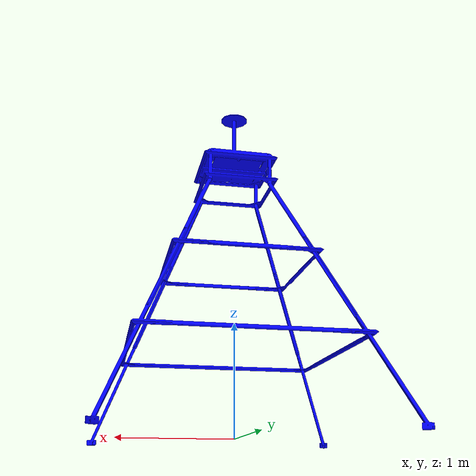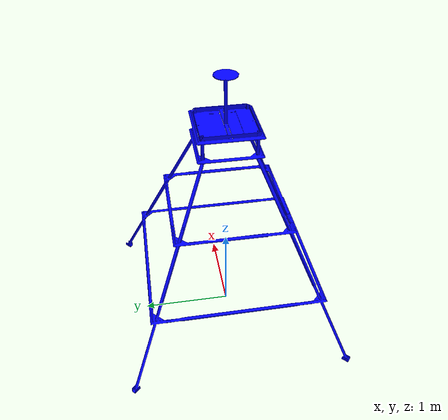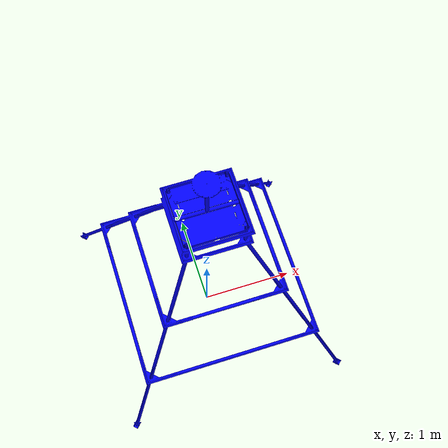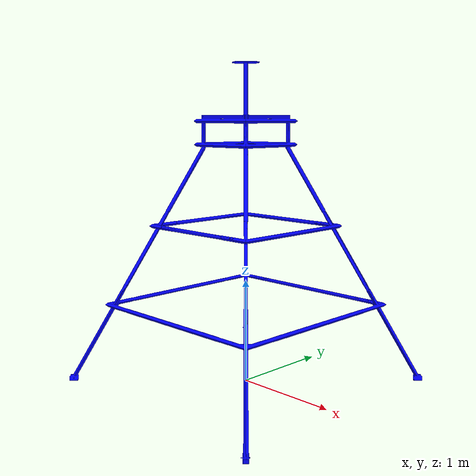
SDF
<?xml version="1.0"?>
<sdf version="1.4">
  <model name="Tower">
    <static>true</static>
    <link name="link">
      <pose>0 0 0 1.570796 0 0</pose>
      <collision name="collision">
        <geometry>
          <mesh>
            <uri>model://tower/meshes/tower_coll.stl</uri>
            <scale>.0254 .0254 .0254</scale>
          </mesh>
        </geometry>
      </collision>
      <visual name="visual">
        <material>
          <ambient>0 0 1 1</ambient>
          <diffuse>0 0 1 1</diffuse>
          <specular>0 0 1 1</specular>
        </material>
        <geometry>
          <mesh>
            <uri>model://tower/meshes/tower.stl</uri>
            <scale>.0254 .0254 .0254</scale>
          </mesh>
        </geometry>
      </visual>
    </link>
  </model>
</sdf>
